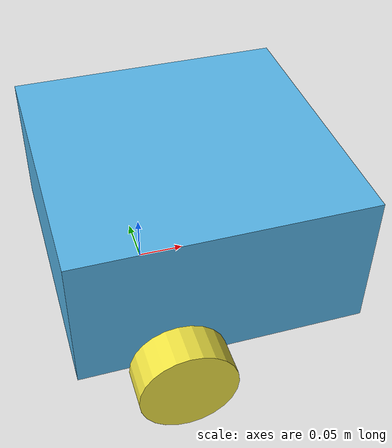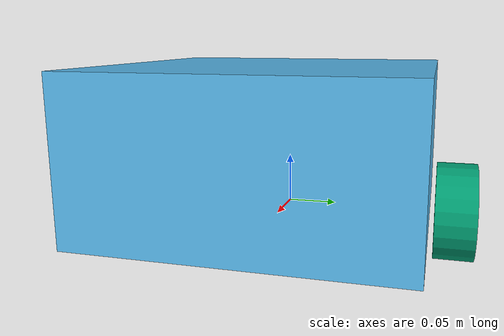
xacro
<?xml version="1.0"?>
<robot xmlns:xacro="http://www.ros.org/wiki/xacro" name="cnav_rover">

    <xacro:macro name="inertial_box" params="mass x y z *origin">
        <inertial>
            <xacro:insert_block name="origin"/>
            <mass value="${mass}"/>
            <inertia ixx="${(1/12) * mass * (y*y+z*z)}" ixy="0.0" ixz="0.0"
                     iyy="${(1/12) * mass * (x*x+z*z)}" iyz="0.0"
                     izz="${(1/12) * mass * (x*x+y*y)}" />
        </inertial>
    </xacro:macro>

    <xacro:macro name="inertial_cylinder" params="mass length radius *origin">
        <inertial>
            <xacro:insert_block name="origin"/>
            <mass value="${mass}"/>
            <inertia ixx="${(1/12) * mass * (3*radius*radius + length*length)}" ixy="0.0" ixz="0.0"
                     iyy="${(1/12) * mass * (3*radius*radius + length*length)}" iyz="0.0"
                     izz="${(0.5) * mass * (radius*radius)}" />
        </inertial>
    </xacro:macro>

    <link name="base_link"></link>

    <joint name="chassis_joint" type="fixed">
        <parent link="base_link"/><child link="chassis"/><origin xyz="-0.1 0 0"/>
    </joint>

    <link name="chassis">
        <visual>
            <origin xyz="0.15 0 0.075"/><geometry><box size="0.3 0.3 0.15"/></geometry>
        </visual>
        <collision>
            <origin xyz="0.15 0 0.075"/><geometry><box size="0.3 0.3 0.15"/></geometry>
        </collision>
        <xacro:inertial_box mass="0.5" x="0.3" y="0.3" z="0.15">
            <origin xyz="0.15 0 0.075" rpy="0 0 0"/>
        </xacro:inertial_box>
    </link>

    <joint name="left_wheel_joint" type="continuous">
        <parent link="base_link"/><child link="left_wheel"/>
        <origin xyz="0 0.175 0" rpy="-${pi/2} 0 0"/><axis xyz="0 0 1"/>
    </joint>
    <link name="left_wheel">
        <visual><geometry><cylinder radius="0.05" length="0.04"/></geometry></visual>
        <collision><geometry><cylinder radius="0.05" length="0.04"/></geometry></collision>
        <xacro:inertial_cylinder mass="0.1" length="0.04" radius="0.05">
            <origin xyz="0 0 0" rpy="0 0 0"/>
        </xacro:inertial_cylinder>
    </link>

    <joint name="right_wheel_joint" type="continuous">
        <parent link="base_link"/><child link="right_wheel"/>
        <origin xyz="0 -0.175 0" rpy="${pi/2} 0 0"/><axis xyz="0 0 -1"/>
    </joint>
    <link name="right_wheel">
        <visual><geometry><cylinder radius="0.05" length="0.04"/></geometry></visual>
        <collision><geometry><cylinder radius="0.05" length="0.04"/></geometry></collision>
        <xacro:inertial_cylinder mass="0.1" length="0.04" radius="0.05">
            <origin xyz="0 0 0" rpy="0 0 0"/>
        </xacro:inertial_cylinder>
    </link>

    </robot>
